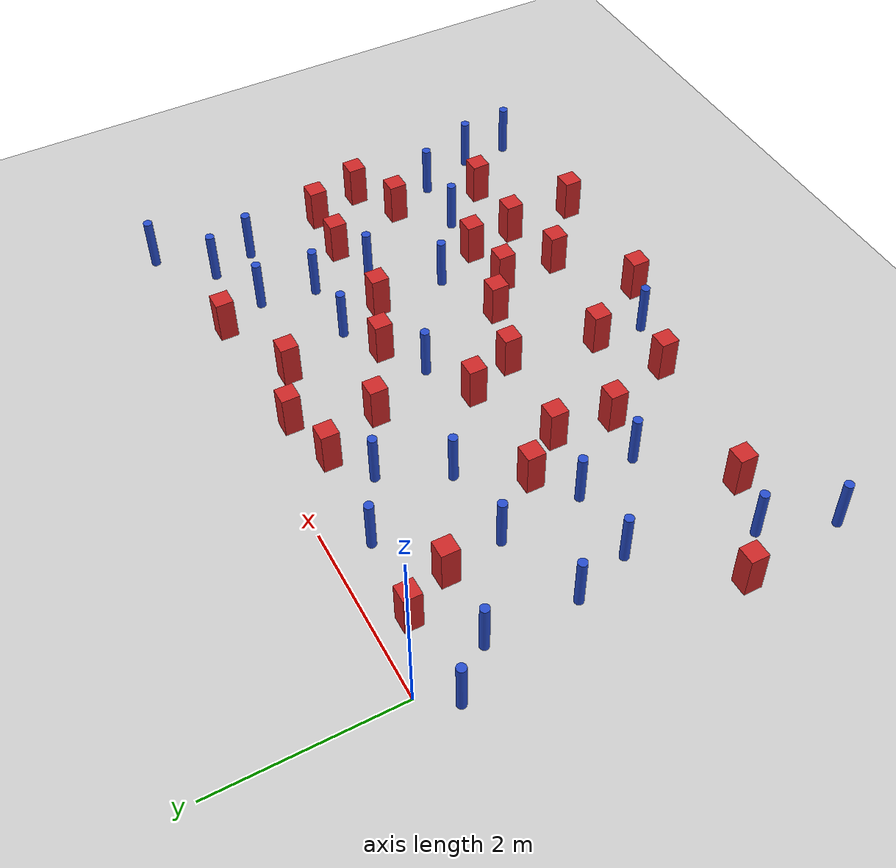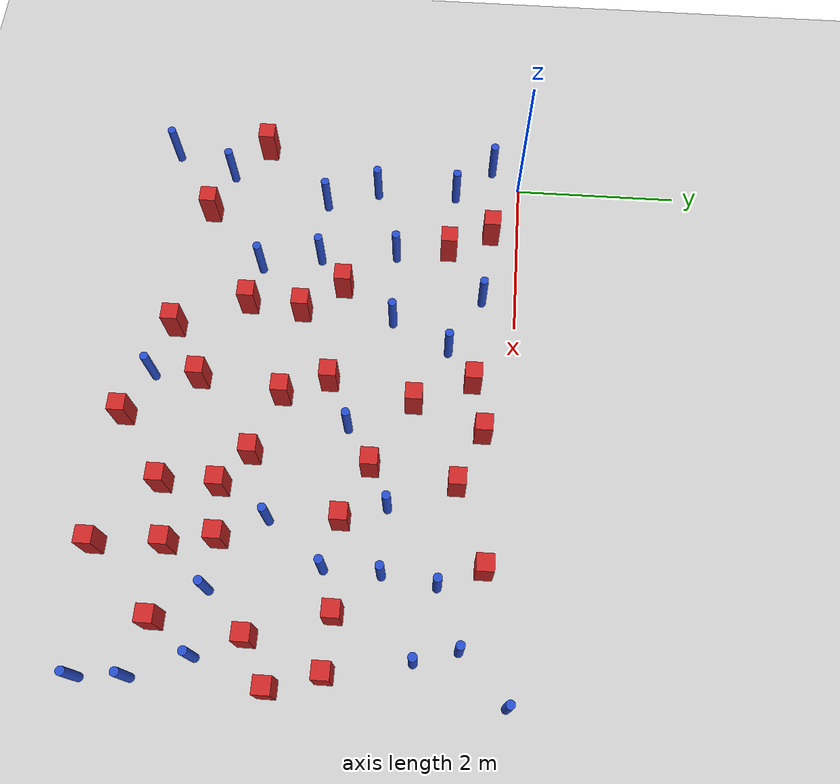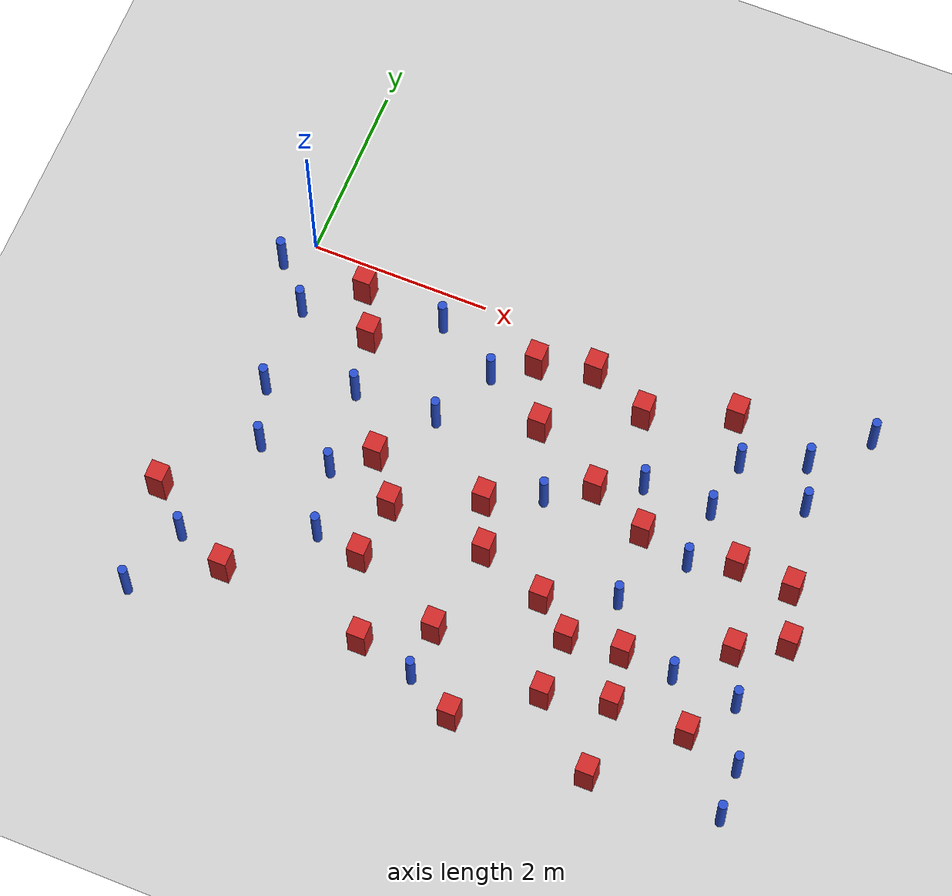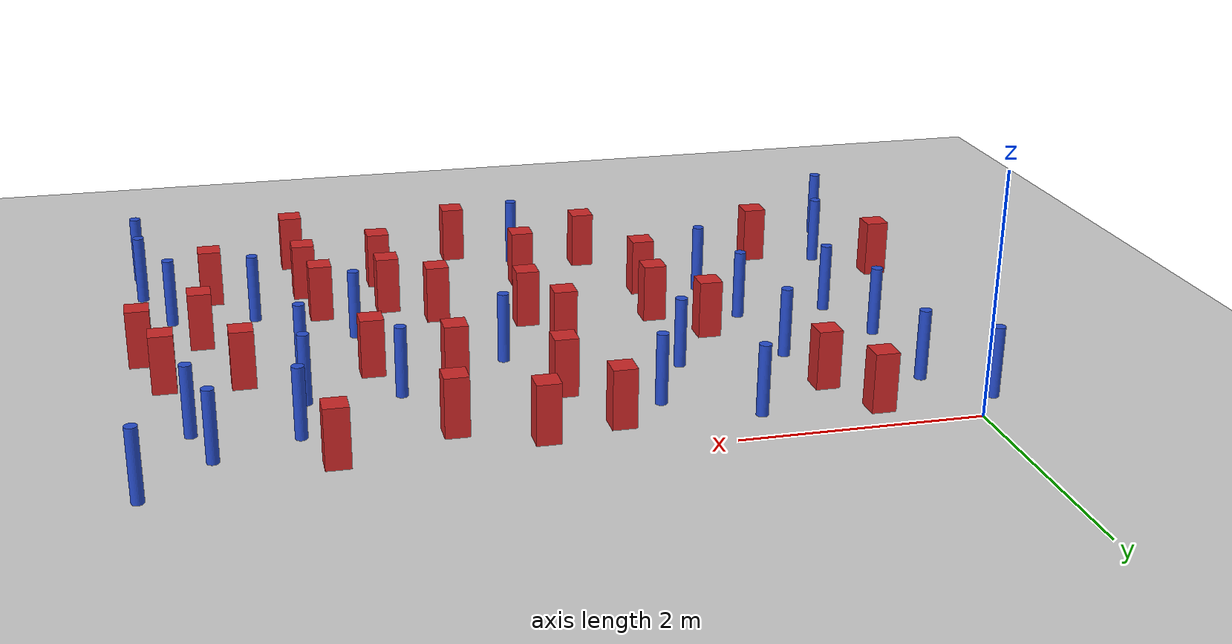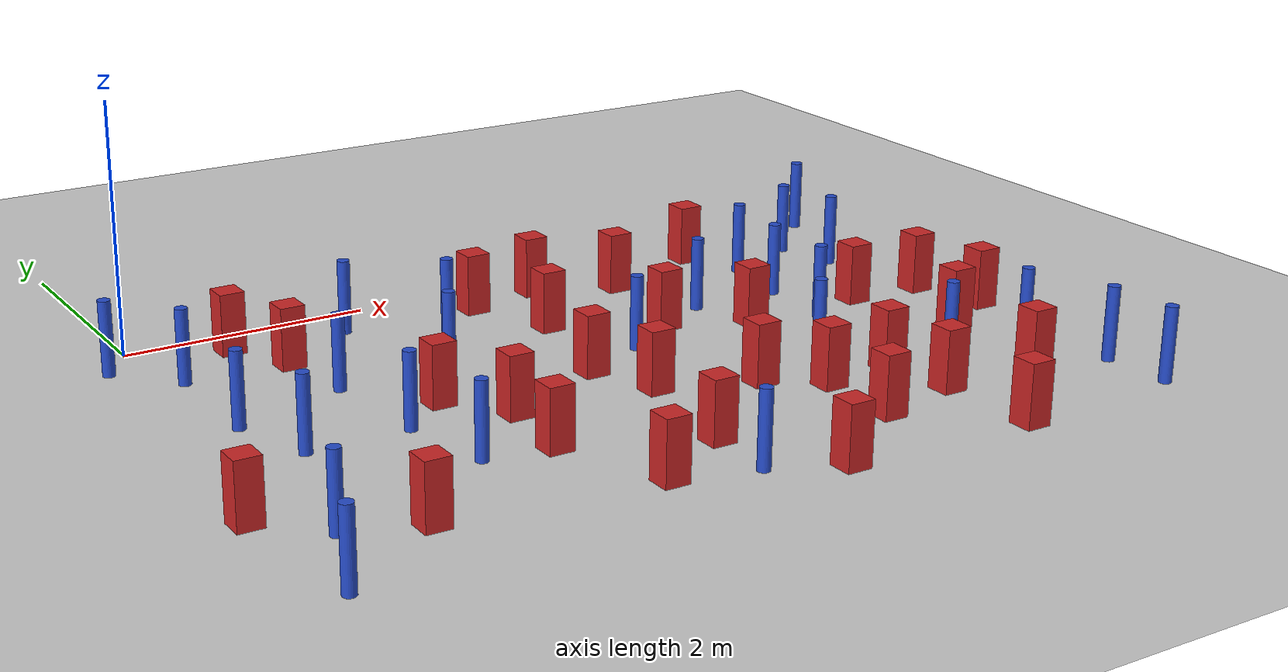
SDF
<sdf version="1.6">
 <world name="default">
  <model name="ground_plane">
   <static>1</static>
   <link name="link">
    <collision name="collision">
     <geometry><plane><normal>0 0 1</normal><size>100 100</size></plane></geometry>
     <surface><friction><ode><mu>100</mu><mu2>50</mu2></ode></friction></surface>
    </collision>
    <visual name="visual">
     <cast_shadows>0</cast_shadows>
     <geometry><plane><normal>0 0 1</normal><size>100 100</size></plane></geometry>
     <material>
      <ambient>1.0 1.0 1.0 1.0</ambient>
      <diffuse>0.8 0.8 0.8 1.0</diffuse>
      <specular>0.01 0.01 0.01 1.000000</specular>
     </material>
    </visual>
   </link>
  </model>
  <model name="NamedLocations">
   <static>true</static>
   <link name="DefaultStart"><pose>8.5 0 0 0 0 3.14</pose></link>
  </model>
  <model name="pole_obstacle3">
   <static>true</static>
   <pose>0.190104860917 -1.80409300815 7.38925637345e-09 -8.471706928e-08 1.24976765082e-08 -1.74513093016e-07</pose>
   <link name="link">
    <pose>0 0 0.3 0 -0 0</pose>
    <inertial>
     <mass>1</mass>
     <inertia><ixx>0.145833</ixx><ixy>0</ixy><ixz>0</ixz><iyy>0.145833</iyy><iyz>0</iyz><izz>0.125</izz></inertia>
    </inertial>
    <collision name="collision">
     <geometry><cylinder><radius>0.05</radius><length>.6</length></cylinder></geometry>
    </collision>
    <visual name="visual">
     <geometry><cylinder><radius>0.05</radius><length>.6</length></cylinder></geometry>
     <material>
      <script><name>Gazebo/Blue</name><uri>file://media/materials/scripts/gazebo.material</uri></script>
     </material>
    </visual>
   </link>
  </model>
  <model name="pole_obstacle4">
   <static>true</static>
   <pose>6.13488294941 -3.3037223995 7.38925637345e-09 -8.47170692798e-08 1.24976764937e-08 -1.74513093023e-07</pose>
   <link name="link">
    <pose>0 0 0.3 0 -0 0</pose>
    <inertial>
     <mass>1</mass>
     <inertia><ixx>0.145833</ixx><ixy>0</ixy><ixz>0</ixz><iyy>0.145833</iyy><iyz>0</iyz><izz>0.125</izz></inertia>
    </inertial>
    <collision name="collision">
     <geometry><cylinder><radius>0.05</radius><length>.6</length></cylinder></geometry>
    </collision>
    <visual name="visual">
     <geometry><cylinder><radius>0.05</radius><length>.6</length></cylinder></geometry>
     <material>
      <script><name>Gazebo/Blue</name><uri>file://media/materials/scripts/gazebo.material</uri></script>
     </material>
    </visual>
   </link>
  </model>
  <model name="square_post_obstacle13">
   <static>true</static>
   <pose>2.26537077516 -4.10136588118 1.91545236811e-07 -7.35059704564e-06 1.12565212e-07 2.39332434364e-05</pose>
   <link name="link">
    <pose>0 0 0.25 0 -0 0</pose>
    <inertial>
     <mass>100</mass>
     <inertia>
      <ixx>0.166667</ixx>
      <ixy>0</ixy>
      <ixz>0</ixz>
      <iyy>0.166667</iyy>
      <iyz>0</iyz>
      <izz>0.166667</izz>
     </inertia>
    </inertial>
    <collision name="collision"><geometry><box><size>.2 .2 .5</size></box></geometry></collision>
    <visual name="visual">
     <geometry><box><size>.2 .2 .5</size></box></geometry>
     <material>
      <script><name>Gazebo/Red</name><uri>file://media/materials/scripts/gazebo.material</uri></script>
     </material>
    </visual>
   </link>
  </model>
  <model name="pole_obstacle9">
   <static>true</static>
   <pose>5.41547490436 -3.25559603564 7.38925637345e-09 -8.47170692798e-08 1.24976764937e-08 -1.74513093023e-07</pose>
   <link name="link">
    <pose>0 0 0.3 0 -0 0</pose>
    <inertial>
     <mass>1</mass>
     <inertia><ixx>0.145833</ixx><ixy>0</ixy><ixz>0</ixz><iyy>0.145833</iyy><iyz>0</iyz><izz>0.125</izz></inertia>
    </inertial>
    <collision name="collision">
     <geometry><cylinder><radius>0.05</radius><length>.6</length></cylinder></geometry>
    </collision>
    <visual name="visual">
     <geometry><cylinder><radius>0.05</radius><length>.6</length></cylinder></geometry>
     <material>
      <script><name>Gazebo/Blue</name><uri>file://media/materials/scripts/gazebo.material</uri></script>
     </material>
    </visual>
   </link>
  </model>
  <model name="pole_obstacle28">
   <static>true</static>
   <pose>6.04790216632 -0.969246670873 7.38925637345e-09 -8.47170692799e-08 1.24976765054e-08 -1.74513093018e-07</pose>
   <link name="link">
    <pose>0 0 0.3 0 -0 0</pose>
    <inertial>
     <mass>1</mass>
     <inertia><ixx>0.145833</ixx><ixy>0</ixy><ixz>0</ixz><iyy>0.145833</iyy><iyz>0</iyz><izz>0.125</izz></inertia>
    </inertial>
    <collision name="collision">
     <geometry><cylinder><radius>0.05</radius><length>.6</length></cylinder></geometry>
    </collision>
    <visual name="visual">
     <geometry><cylinder><radius>0.05</radius><length>.6</length></cylinder></geometry>
     <material>
      <script><name>Gazebo/Blue</name><uri>file://media/materials/scripts/gazebo.material</uri></script>
     </material>
    </visual>
   </link>
  </model>
  <model name="square_post_obstacle34">
   <static>true</static>
   <pose>4.23699049042 -3.9463016719 1.91545236811e-07 -7.35059704564e-06 1.12565212e-07 2.39332434364e-05</pose>
   <link name="link">
    <pose>0 0 0.25 0 -0 0</pose>
    <inertial>
     <mass>100</mass>
     <inertia>
      <ixx>0.166667</ixx>
      <ixy>0</ixy>
      <ixz>0</ixz>
      <iyy>0.166667</iyy>
      <iyz>0</iyz>
      <izz>0.166667</izz>
     </inertia>
    </inertial>
    <collision name="collision"><geometry><box><size>.2 .2 .5</size></box></geometry></collision>
    <visual name="visual">
     <geometry><box><size>.2 .2 .5</size></box></geometry>
     <material>
      <script><name>Gazebo/Red</name><uri>file://media/materials/scripts/gazebo.material</uri></script>
     </material>
    </visual>
   </link>
  </model>
  <model name="pole_obstacle35">
   <static>true</static>
   <pose>0.180517765989 -0.8054261735 7.38925637345e-09 -8.47170692797e-08 1.24976764912e-08 -1.74513093025e-07</pose>
   <link name="link">
    <pose>0 0 0.3 0 -0 0</pose>
    <inertial>
     <mass>1</mass>
     <inertia><ixx>0.145833</ixx><ixy>0</ixy><ixz>0</ixz><iyy>0.145833</iyy><iyz>0</iyz><izz>0.125</izz></inertia>
    </inertial>
    <collision name="collision">
     <geometry><cylinder><radius>0.05</radius><length>.6</length></cylinder></geometry>
    </collision>
    <visual name="visual">
     <geometry><cylinder><radius>0.05</radius><length>.6</length></cylinder></geometry>
     <material>
      <script><name>Gazebo/Blue</name><uri>file://media/materials/scripts/gazebo.material</uri></script>
     </material>
    </visual>
   </link>
  </model>
  <model name="square_post_obstacle37">
   <static>true</static>
   <pose>3.08538696754 -2.70068323711 1.91545236811e-07 -7.35059704564e-06 1.12565212e-07 2.39332434364e-05</pose>
   <link name="link">
    <pose>0 0 0.25 0 -0 0</pose>
    <inertial>
     <mass>100</mass>
     <inertia>
      <ixx>0.166667</ixx>
      <ixy>0</ixy>
      <ixz>0</ixz>
      <iyy>0.166667</iyy>
      <iyz>0</iyz>
      <izz>0.166667</izz>
     </inertia>
    </inertial>
    <collision name="collision"><geometry><box><size>.2 .2 .5</size></box></geometry></collision>
    <visual name="visual">
     <geometry><box><size>.2 .2 .5</size></box></geometry>
     <material>
      <script><name>Gazebo/Red</name><uri>file://media/materials/scripts/gazebo.material</uri></script>
     </material>
    </visual>
   </link>
  </model>
  <model name="square_post_obstacle43">
   <static>true</static>
   <pose>6.2269963533 -1.89802736786 1.91545236811e-07 -7.35059704564e-06 1.12565212e-07 2.39332434364e-05</pose>
   <link name="link">
    <pose>0 0 0.25 0 -0 0</pose>
    <inertial>
     <mass>100</mass>
     <inertia>
      <ixx>0.166667</ixx>
      <ixy>0</ixy>
      <ixz>0</ixz>
      <iyy>0.166667</iyy>
      <iyz>0</iyz>
      <izz>0.166667</izz>
     </inertia>
    </inertial>
    <collision name="collision"><geometry><box><size>.2 .2 .5</size></box></geometry></collision>
    <visual name="visual">
     <geometry><box><size>.2 .2 .5</size></box></geometry>
     <material>
      <script><name>Gazebo/Red</name><uri>file://media/materials/scripts/gazebo.material</uri></script>
     </material>
    </visual>
   </link>
  </model>
  <model name="pole_obstacle46">
   <static>true</static>
   <pose>1.10864863287 -1.50291340868 7.38925637345e-09 -8.471706928e-08 1.24976765079e-08 -1.74513093017e-07</pose>
   <link name="link">
    <pose>0 0 0.3 0 -0 0</pose>
    <inertial>
     <mass>1</mass>
     <inertia><ixx>0.145833</ixx><ixy>0</ixy><ixz>0</ixz><iyy>0.145833</iyy><iyz>0</iyz><izz>0.125</izz></inertia>
    </inertial>
    <collision name="collision">
     <geometry><cylinder><radius>0.05</radius><length>.6</length></cylinder></geometry>
    </collision>
    <visual name="visual">
     <geometry><cylinder><radius>0.05</radius><length>.6</length></cylinder></geometry>
     <material>
      <script><name>Gazebo/Blue</name><uri>file://media/materials/scripts/gazebo.material</uri></script>
     </material>
    </visual>
   </link>
  </model>
  <model name="square_post_obstacle54">
   <static>true</static>
   <pose>6.40881073751 -2.48074420699 1.91545236811e-07 -7.35059704564e-06 1.12565212e-07 2.39332434364e-05</pose>
   <link name="link">
    <pose>0 0 0.25 0 -0 0</pose>
    <inertial>
     <mass>100</mass>
     <inertia>
      <ixx>0.166667</ixx>
      <ixy>0</ixy>
      <ixz>0</ixz>
      <iyy>0.166667</iyy>
      <iyz>0</iyz>
      <izz>0.166667</izz>
     </inertia>
    </inertial>
    <collision name="collision"><geometry><box><size>.2 .2 .5</size></box></geometry></collision>
    <visual name="visual">
     <geometry><box><size>.2 .2 .5</size></box></geometry>
     <material>
      <script><name>Gazebo/Red</name><uri>file://media/materials/scripts/gazebo.material</uri></script>
     </material>
    </visual>
   </link>
  </model>
  <model name="pole_obstacle55">
   <static>true</static>
   <pose>3.44064625358 -1.89906239642 7.38925637345e-09 -8.471706928e-08 1.24976765152e-08 -1.74513093012e-07</pose>
   <link name="link">
    <pose>0 0 0.3 0 -0 0</pose>
    <inertial>
     <mass>1</mass>
     <inertia><ixx>0.145833</ixx><ixy>0</ixy><ixz>0</ixz><iyy>0.145833</iyy><iyz>0</iyz><izz>0.125</izz></inertia>
    </inertial>
    <collision name="collision">
     <geometry><cylinder><radius>0.05</radius><length>.6</length></cylinder></geometry>
    </collision>
    <visual name="visual">
     <geometry><cylinder><radius>0.05</radius><length>.6</length></cylinder></geometry>
     <material>
      <script><name>Gazebo/Blue</name><uri>file://media/materials/scripts/gazebo.material</uri></script>
     </material>
    </visual>
   </link>
  </model>
  <model name="pole_obstacle59">
   <static>true</static>
   <pose>5.22656127073 -0.758784430327 7.38925637345e-09 -8.47170692799e-08 1.24976765038e-08 -1.74513093018e-07</pose>
   <link name="link">
    <pose>0 0 0.3 0 -0 0</pose>
    <inertial>
     <mass>1</mass>
     <inertia><ixx>0.145833</ixx><ixy>0</ixy><ixz>0</ixz><iyy>0.145833</iyy><iyz>0</iyz><izz>0.125</izz></inertia>
    </inertial>
    <collision name="collision">
     <geometry><cylinder><radius>0.05</radius><length>.6</length></cylinder></geometry>
    </collision>
    <visual name="visual">
     <geometry><cylinder><radius>0.05</radius><length>.6</length></cylinder></geometry>
     <material>
      <script><name>Gazebo/Blue</name><uri>file://media/materials/scripts/gazebo.material</uri></script>
     </material>
    </visual>
   </link>
  </model>
  <model name="square_post_obstacle64">
   <static>true</static>
   <pose>3.90134707465 -1.59947551996 1.91545236811e-07 -7.35059704564e-06 1.12565212e-07 2.39332434364e-05</pose>
   <link name="link">
    <pose>0 0 0.25 0 -0 0</pose>
    <inertial>
     <mass>100</mass>
     <inertia>
      <ixx>0.166667</ixx>
      <ixy>0</ixy>
      <ixz>0</ixz>
      <iyy>0.166667</iyy>
      <iyz>0</iyz>
      <izz>0.166667</izz>
     </inertia>
    </inertial>
    <collision name="collision"><geometry><box><size>.2 .2 .5</size></box></geometry></collision>
    <visual name="visual">
     <geometry><box><size>.2 .2 .5</size></box></geometry>
     <material>
      <script><name>Gazebo/Red</name><uri>file://media/materials/scripts/gazebo.material</uri></script>
     </material>
    </visual>
   </link>
  </model>
  <model name="square_post_obstacle80">
   <static>true</static>
   <pose>4.23727458246 -3.27920661459 1.91545236811e-07 -7.35059704564e-06 1.12565212e-07 2.39332434364e-05</pose>
   <link name="link">
    <pose>0 0 0.25 0 -0 0</pose>
    <inertial>
     <mass>100</mass>
     <inertia>
      <ixx>0.166667</ixx>
      <ixy>0</ixy>
      <ixz>0</ixz>
      <iyy>0.166667</iyy>
      <iyz>0</iyz>
      <izz>0.166667</izz>
     </inertia>
    </inertial>
    <collision name="collision"><geometry><box><size>.2 .2 .5</size></box></geometry></collision>
    <visual name="visual">
     <geometry><box><size>.2 .2 .5</size></box></geometry>
     <material>
      <script><name>Gazebo/Red</name><uri>file://media/materials/scripts/gazebo.material</uri></script>
     </material>
    </visual>
   </link>
  </model>
  <model name="square_post_obstacle82">
   <static>true</static>
   <pose>5.595499112 -1.85667878392 1.91545236811e-07 -7.35059704564e-06 1.12565212e-07 2.39332434364e-05</pose>
   <link name="link">
    <pose>0 0 0.25 0 -0 0</pose>
    <inertial>
     <mass>100</mass>
     <inertia>
      <ixx>0.166667</ixx>
      <ixy>0</ixy>
      <ixz>0</ixz>
      <iyy>0.166667</iyy>
      <iyz>0</iyz>
      <izz>0.166667</izz>
     </inertia>
    </inertial>
    <collision name="collision"><geometry><box><size>.2 .2 .5</size></box></geometry></collision>
    <visual name="visual">
     <geometry><box><size>.2 .2 .5</size></box></geometry>
     <material>
      <script><name>Gazebo/Red</name><uri>file://media/materials/scripts/gazebo.material</uri></script>
     </material>
    </visual>
   </link>
  </model>
  <model name="pole_obstacle94">
   <static>true</static>
   <pose>2.38616526436 -0.786271485599 7.38925637345e-09 -8.471706928e-08 1.24976765177e-08 -1.74513093012e-07</pose>
   <link name="link">
    <pose>0 0 0.3 0 -0 0</pose>
    <inertial>
     <mass>1</mass>
     <inertia><ixx>0.145833</ixx><ixy>0</ixy><ixz>0</ixz><iyy>0.145833</iyy><iyz>0</iyz><izz>0.125</izz></inertia>
    </inertial>
    <collision name="collision">
     <geometry><cylinder><radius>0.05</radius><length>.6</length></cylinder></geometry>
    </collision>
    <visual name="visual">
     <geometry><cylinder><radius>0.05</radius><length>.6</length></cylinder></geometry>
     <material>
      <script><name>Gazebo/Blue</name><uri>file://media/materials/scripts/gazebo.material</uri></script>
     </material>
    </visual>
   </link>
  </model>
  <model name="pole_obstacle95">
   <static>true</static>
   <pose>6.44394067832 0.0369719980429 7.38925637345e-09 -8.471706928e-08 1.24976765155e-08 -1.74513093014e-07</pose>
   <link name="link">
    <pose>0 0 0.3 0 -0 0</pose>
    <inertial>
     <mass>1</mass>
     <inertia><ixx>0.145833</ixx><ixy>0</ixy><ixz>0</ixz><iyy>0.145833</iyy><iyz>0</iyz><izz>0.125</izz></inertia>
    </inertial>
    <collision name="collision">
     <geometry><cylinder><radius>0.05</radius><length>.6</length></cylinder></geometry>
    </collision>
    <visual name="visual">
     <geometry><cylinder><radius>0.05</radius><length>.6</length></cylinder></geometry>
     <material>
      <script><name>Gazebo/Blue</name><uri>file://media/materials/scripts/gazebo.material</uri></script>
     </material>
    </visual>
   </link>
  </model>
  <model name="pole_obstacle100">
   <static>true</static>
   <pose>6.38369199765 -3.95732953606 7.38925637345e-09 -8.47170692799e-08 1.24976764984e-08 -1.7451309302e-07</pose>
   <link name="link">
    <pose>0 0 0.3 0 -0 0</pose>
    <inertial>
     <mass>1</mass>
     <inertia><ixx>0.145833</ixx><ixy>0</ixy><ixz>0</ixz><iyy>0.145833</iyy><iyz>0</iyz><izz>0.125</izz></inertia>
    </inertial>
    <collision name="collision">
     <geometry><cylinder><radius>0.05</radius><length>.6</length></cylinder></geometry>
    </collision>
    <visual name="visual">
     <geometry><cylinder><radius>0.05</radius><length>.6</length></cylinder></geometry>
     <material>
      <script><name>Gazebo/Blue</name><uri>file://media/materials/scripts/gazebo.material</uri></script>
     </material>
    </visual>
   </link>
  </model>
  <model name="pole_obstacle102">
   <static>true</static>
   <pose>4.59342651132 -2.69189861537 7.38925637345e-09 -8.47170692798e-08 1.24976764937e-08 -1.74513093023e-07</pose>
   <link name="link">
    <pose>0 0 0.3 0 -0 0</pose>
    <inertial>
     <mass>1</mass>
     <inertia><ixx>0.145833</ixx><ixy>0</ixy><ixz>0</ixz><iyy>0.145833</iyy><iyz>0</iyz><izz>0.125</izz></inertia>
    </inertial>
    <collision name="collision">
     <geometry><cylinder><radius>0.05</radius><length>.6</length></cylinder></geometry>
    </collision>
    <visual name="visual">
     <geometry><cylinder><radius>0.05</radius><length>.6</length></cylinder></geometry>
     <material>
      <script><name>Gazebo/Blue</name><uri>file://media/materials/scripts/gazebo.material</uri></script>
     </material>
    </visual>
   </link>
  </model>
  <model name="square_post_obstacle94">
   <static>true</static>
   <pose>5.89674232546 -2.76287436021 1.91545236811e-07 -7.35059704564e-06 1.12565212e-07 2.39332434364e-05</pose>
   <link name="link">
    <pose>0 0 0.25 0 -0 0</pose>
    <inertial>
     <mass>100</mass>
     <inertia>
      <ixx>0.166667</ixx>
      <ixy>0</ixy>
      <ixz>0</ixz>
      <iyy>0.166667</iyy>
      <iyz>0</iyz>
      <izz>0.166667</izz>
     </inertia>
    </inertial>
    <collision name="collision"><geometry><box><size>.2 .2 .5</size></box></geometry></collision>
    <visual name="visual">
     <geometry><box><size>.2 .2 .5</size></box></geometry>
     <material>
      <script><name>Gazebo/Red</name><uri>file://media/materials/scripts/gazebo.material</uri></script>
     </material>
    </visual>
   </link>
  </model>
  <model name="square_post_obstacle100">
   <static>true</static>
   <pose>3.44520752982 -4.51796388157 1.91545236811e-07 -7.35059704564e-06 1.12565212e-07 2.39332434364e-05</pose>
   <link name="link">
    <pose>0 0 0.25 0 -0 0</pose>
    <inertial>
     <mass>100</mass>
     <inertia>
      <ixx>0.166667</ixx>
      <ixy>0</ixy>
      <ixz>0</ixz>
      <iyy>0.166667</iyy>
      <iyz>0</iyz>
      <izz>0.166667</izz>
     </inertia>
    </inertial>
    <collision name="collision"><geometry><box><size>.2 .2 .5</size></box></geometry></collision>
    <visual name="visual">
     <geometry><box><size>.2 .2 .5</size></box></geometry>
     <material>
      <script><name>Gazebo/Red</name><uri>file://media/materials/scripts/gazebo.material</uri></script>
     </material>
    </visual>
   </link>
  </model>
  <model name="square_post_obstacle102">
   <static>true</static>
   <pose>4.93866771958 -3.77822067983 1.91545236811e-07 -7.35059704564e-06 1.12565212e-07 2.39332434364e-05</pose>
   <link name="link">
    <pose>0 0 0.25 0 -0 0</pose>
    <inertial>
     <mass>100</mass>
     <inertia>
      <ixx>0.166667</ixx>
      <ixy>0</ixy>
      <ixz>0</ixz>
      <iyy>0.166667</iyy>
      <iyz>0</iyz>
      <izz>0.166667</izz>
     </inertia>
    </inertial>
    <collision name="collision"><geometry><box><size>.2 .2 .5</size></box></geometry></collision>
    <visual name="visual">
     <geometry><box><size>.2 .2 .5</size></box></geometry>
     <material>
      <script><name>Gazebo/Red</name><uri>file://media/materials/scripts/gazebo.material</uri></script>
     </material>
    </visual>
   </link>
  </model>
  <model name="pole_obstacle116">
   <static>true</static>
   <pose>0.408193420048 -2.43793831841 7.38925637345e-09 -8.471706928e-08 1.24976765084e-08 -1.74513093017e-07</pose>
   <link name="link">
    <pose>0 0 0.3 0 -0 0</pose>
    <inertial>
     <mass>1</mass>
     <inertia><ixx>0.145833</ixx><ixy>0</ixy><ixz>0</ixz><iyy>0.145833</iyy><iyz>0</iyz><izz>0.125</izz></inertia>
    </inertial>
    <collision name="collision">
     <geometry><cylinder><radius>0.05</radius><length>.6</length></cylinder></geometry>
    </collision>
    <visual name="visual">
     <geometry><cylinder><radius>0.05</radius><length>.6</length></cylinder></geometry>
     <material>
      <script><name>Gazebo/Blue</name><uri>file://media/materials/scripts/gazebo.material</uri></script>
     </material>
    </visual>
   </link>
  </model>
  <model name="square_post_obstacle107">
   <static>true</static>
   <pose>4.06823470605 -0.60235144514 1.91545236811e-07 -7.35059704564e-06 1.12565212e-07 2.39332434364e-05</pose>
   <link name="link">
    <pose>0 0 0.25 0 -0 0</pose>
    <inertial>
     <mass>100</mass>
     <inertia>
      <ixx>0.166667</ixx>
      <ixy>0</ixy>
      <ixz>0</ixz>
      <iyy>0.166667</iyy>
      <iyz>0</iyz>
      <izz>0.166667</izz>
     </inertia>
    </inertial>
    <collision name="collision"><geometry><box><size>.2 .2 .5</size></box></geometry></collision>
    <visual name="visual">
     <geometry><box><size>.2 .2 .5</size></box></geometry>
     <material>
      <script><name>Gazebo/Red</name><uri>file://media/materials/scripts/gazebo.material</uri></script>
     </material>
    </visual>
   </link>
  </model>
  <model name="pole_obstacle121">
   <static>true</static>
   <pose>-0.234041641473 -4.45818141771 7.38925637345e-09 -8.47170692799e-08 1.2497676507e-08 -1.74513093018e-07</pose>
   <link name="link">
    <pose>0 0 0.3 0 -0 0</pose>
    <inertial>
     <mass>1</mass>
     <inertia><ixx>0.145833</ixx><ixy>0</ixy><ixz>0</ixz><iyy>0.145833</iyy><iyz>0</iyz><izz>0.125</izz></inertia>
    </inertial>
    <collision name="collision">
     <geometry><cylinder><radius>0.05</radius><length>.6</length></cylinder></geometry>
    </collision>
    <visual name="visual">
     <geometry><cylinder><radius>0.05</radius><length>.6</length></cylinder></geometry>
     <material>
      <script><name>Gazebo/Blue</name><uri>file://media/materials/scripts/gazebo.material</uri></script>
     </material>
    </visual>
   </link>
  </model>
  <model name="square_post_obstacle113">
   <static>true</static>
   <pose>0.612975244775 -3.89086558035 1.91545236811e-07 -7.35059704564e-06 1.12565212e-07 2.39332434364e-05</pose>
   <link name="link">
    <pose>0 0 0.25 0 -0 0</pose>
    <inertial>
     <mass>100</mass>
     <inertia>
      <ixx>0.166667</ixx>
      <ixy>0</ixy>
      <ixz>0</ixz>
      <iyy>0.166667</iyy>
      <iyz>0</iyz>
      <izz>0.166667</izz>
     </inertia>
    </inertial>
    <collision name="collision"><geometry><box><size>.2 .2 .5</size></box></geometry></collision>
    <visual name="visual">
     <geometry><box><size>.2 .2 .5</size></box></geometry>
     <material>
      <script><name>Gazebo/Red</name><uri>file://media/materials/scripts/gazebo.material</uri></script>
     </material>
    </visual>
   </link>
  </model>
  <model name="pole_obstacle135">
   <static>true</static>
   <pose>-0.241580248455 -0.348323415008 7.38925637345e-09 -8.47170692799e-08 1.2497676501e-08 -1.74513093019e-07</pose>
   <link name="link">
    <pose>0 0 0.3 0 -0 0</pose>
    <inertial>
     <mass>1</mass>
     <inertia><ixx>0.145833</ixx><ixy>0</ixy><ixz>0</ixz><iyy>0.145833</iyy><iyz>0</iyz><izz>0.125</izz></inertia>
    </inertial>
    <collision name="collision">
     <geometry><cylinder><radius>0.05</radius><length>.6</length></cylinder></geometry>
    </collision>
    <visual name="visual">
     <geometry><cylinder><radius>0.05</radius><length>.6</length></cylinder></geometry>
     <material>
      <script><name>Gazebo/Blue</name><uri>file://media/materials/scripts/gazebo.material</uri></script>
     </material>
    </visual>
   </link>
  </model>
  <model name="square_post_obstacle116">
   <static>true</static>
   <pose>3.41578919881 -0.332921589701 1.91545236811e-07 -7.35059704564e-06 1.12565212e-07 2.39332434364e-05</pose>
   <link name="link">
    <pose>0 0 0.25 0 -0 0</pose>
    <inertial>
     <mass>100</mass>
     <inertia>
      <ixx>0.166667</ixx>
      <ixy>0</ixy>
      <ixz>0</ixz>
      <iyy>0.166667</iyy>
      <iyz>0</iyz>
      <izz>0.166667</izz>
     </inertia>
    </inertial>
    <collision name="collision"><geometry><box><size>.2 .2 .5</size></box></geometry></collision>
    <visual name="visual">
     <geometry><box><size>.2 .2 .5</size></box></geometry>
     <material>
      <script><name>Gazebo/Red</name><uri>file://media/materials/scripts/gazebo.material</uri></script>
     </material>
    </visual>
   </link>
  </model>
  <model name="pole_obstacle143">
   <static>true</static>
   <pose>1.37550552298 -3.16352917887 7.38925637345e-09 -8.47170692799e-08 1.24976765053e-08 -1.74513093017e-07</pose>
   <link name="link">
    <pose>0 0 0.3 0 -0 0</pose>
    <inertial>
     <mass>1</mass>
     <inertia><ixx>0.145833</ixx><ixy>0</ixy><ixz>0</ixz><iyy>0.145833</iyy><iyz>0</iyz><izz>0.125</izz></inertia>
    </inertial>
    <collision name="collision">
     <geometry><cylinder><radius>0.05</radius><length>.6</length></cylinder></geometry>
    </collision>
    <visual name="visual">
     <geometry><cylinder><radius>0.05</radius><length>.6</length></cylinder></geometry>
     <material>
      <script><name>Gazebo/Blue</name><uri>file://media/materials/scripts/gazebo.material</uri></script>
     </material>
    </visual>
   </link>
  </model>
  <model name="pole_obstacle147">
   <static>true</static>
   <pose>2.03161095835 -1.47887132107 7.38925637345e-09 -8.471706928e-08 1.24976765091e-08 -1.74513093016e-07</pose>
   <link name="link">
    <pose>0 0 0.3 0 -0 0</pose>
    <inertial>
     <mass>1</mass>
     <inertia><ixx>0.145833</ixx><ixy>0</ixy><ixz>0</ixz><iyy>0.145833</iyy><iyz>0</iyz><izz>0.125</izz></inertia>
    </inertial>
    <collision name="collision">
     <geometry><cylinder><radius>0.05</radius><length>.6</length></cylinder></geometry>
    </collision>
    <visual name="visual">
     <geometry><cylinder><radius>0.05</radius><length>.6</length></cylinder></geometry>
     <material>
      <script><name>Gazebo/Blue</name><uri>file://media/materials/scripts/gazebo.material</uri></script>
     </material>
    </visual>
   </link>
  </model>
  <model name="pole_obstacle148">
   <static>true</static>
   <pose>1.67487731731 -0.408431496181 7.38925637345e-09 -8.47170692799e-08 1.24976765065e-08 -1.74513093017e-07</pose>
   <link name="link">
    <pose>0 0 0.3 0 -0 0</pose>
    <inertial>
     <mass>1</mass>
     <inertia><ixx>0.145833</ixx><ixy>0</ixy><ixz>0</ixz><iyy>0.145833</iyy><iyz>0</iyz><izz>0.125</izz></inertia>
    </inertial>
    <collision name="collision">
     <geometry><cylinder><radius>0.05</radius><length>.6</length></cylinder></geometry>
    </collision>
    <visual name="visual">
     <geometry><cylinder><radius>0.05</radius><length>.6</length></cylinder></geometry>
     <material>
      <script><name>Gazebo/Blue</name><uri>file://media/materials/scripts/gazebo.material</uri></script>
     </material>
    </visual>
   </link>
  </model>
  <model name="pole_obstacle155">
   <static>true</static>
   <pose>1.21126597006 -2.43875870268 7.38925637345e-09 -8.47170692799e-08 1.24976765053e-08 -1.74513093017e-07</pose>
   <link name="link">
    <pose>0 0 0.3 0 -0 0</pose>
    <inertial>
     <mass>1</mass>
     <inertia><ixx>0.145833</ixx><ixy>0</ixy><ixz>0</ixz><iyy>0.145833</iyy><iyz>0</iyz><izz>0.125</izz></inertia>
    </inertial>
    <collision name="collision">
     <geometry><cylinder><radius>0.05</radius><length>.6</length></cylinder></geometry>
    </collision>
    <visual name="visual">
     <geometry><cylinder><radius>0.05</radius><length>.6</length></cylinder></geometry>
     <material>
      <script><name>Gazebo/Blue</name><uri>file://media/materials/scripts/gazebo.material</uri></script>
     </material>
    </visual>
   </link>
  </model>
  <model name="square_post_obstacle147">
   <static>true</static>
   <pose>0.998170684138 -0.853879928674 1.91545236811e-07 -7.35059704564e-06 1.12565212e-07 2.39332434364e-05</pose>
   <link name="link">
    <pose>0 0 0.25 0 -0 0</pose>
    <inertial>
     <mass>100</mass>
     <inertia>
      <ixx>0.166667</ixx>
      <ixy>0</ixy>
      <ixz>0</ixz>
      <iyy>0.166667</iyy>
      <iyz>0</iyz>
      <izz>0.166667</izz>
     </inertia>
    </inertial>
    <collision name="collision"><geometry><box><size>.2 .2 .5</size></box></geometry></collision>
    <visual name="visual">
     <geometry><box><size>.2 .2 .5</size></box></geometry>
     <material>
      <script><name>Gazebo/Red</name><uri>file://media/materials/scripts/gazebo.material</uri></script>
     </material>
    </visual>
   </link>
  </model>
  <model name="square_post_obstacle159">
   <static>true</static>
   <pose>4.83932074579 -3.21287316476 1.91545236811e-07 -7.35059704564e-06 1.12565212e-07 2.39332434364e-05</pose>
   <link name="link">
    <pose>0 0 0.25 0 -0 0</pose>
    <inertial>
     <mass>100</mass>
     <inertia>
      <ixx>0.166667</ixx>
      <ixy>0</ixy>
      <ixz>0</ixz>
      <iyy>0.166667</iyy>
      <iyz>0</iyz>
      <izz>0.166667</izz>
     </inertia>
    </inertial>
    <collision name="collision"><geometry><box><size>.2 .2 .5</size></box></geometry></collision>
    <visual name="visual">
     <geometry><box><size>.2 .2 .5</size></box></geometry>
     <material>
      <script><name>Gazebo/Red</name><uri>file://media/materials/scripts/gazebo.material</uri></script>
     </material>
    </visual>
   </link>
  </model>
  <model name="pole_obstacle169">
   <static>true</static>
   <pose>5.11181254033 -2.0247705108 7.38925637345e-09 -8.471706928e-08 1.2497676506e-08 -1.74513093017e-07</pose>
   <link name="link">
    <pose>0 0 0.3 0 -0 0</pose>
    <inertial>
     <mass>1</mass>
     <inertia><ixx>0.145833</ixx><ixy>0</ixy><ixz>0</ixz><iyy>0.145833</iyy><iyz>0</iyz><izz>0.125</izz></inertia>
    </inertial>
    <collision name="collision">
     <geometry><cylinder><radius>0.05</radius><length>.6</length></cylinder></geometry>
    </collision>
    <visual name="visual">
     <geometry><cylinder><radius>0.05</radius><length>.6</length></cylinder></geometry>
     <material>
      <script><name>Gazebo/Blue</name><uri>file://media/materials/scripts/gazebo.material</uri></script>
     </material>
    </visual>
   </link>
  </model>
  <model name="square_post_obstacle162">
   <static>true</static>
   <pose>1.60386799594 -2.11218777321 1.91545236811e-07 -7.35059704564e-06 1.12565212e-07 2.39332434364e-05</pose>
   <link name="link">
    <pose>0 0 0.25 0 -0 0</pose>
    <inertial>
     <mass>100</mass>
     <inertia>
      <ixx>0.166667</ixx>
      <ixy>0</ixy>
      <ixz>0</ixz>
      <iyy>0.166667</iyy>
      <iyz>0</iyz>
      <izz>0.166667</izz>
     </inertia>
    </inertial>
    <collision name="collision"><geometry><box><size>.2 .2 .5</size></box></geometry></collision>
    <visual name="visual">
     <geometry><box><size>.2 .2 .5</size></box></geometry>
     <material>
      <script><name>Gazebo/Red</name><uri>file://media/materials/scripts/gazebo.material</uri></script>
     </material>
    </visual>
   </link>
  </model>
  <model name="square_post_obstacle164">
   <static>true</static>
   <pose>4.98588616391 -4.58839596339 1.91545236811e-07 -7.35059704564e-06 1.12565212e-07 2.39332434364e-05</pose>
   <link name="link">
    <pose>0 0 0.25 0 -0 0</pose>
    <inertial>
     <mass>100</mass>
     <inertia>
      <ixx>0.166667</ixx>
      <ixy>0</ixy>
      <ixz>0</ixz>
      <iyy>0.166667</iyy>
      <iyz>0</iyz>
      <izz>0.166667</izz>
     </inertia>
    </inertial>
    <collision name="collision"><geometry><box><size>.2 .2 .5</size></box></geometry></collision>
    <visual name="visual">
     <geometry><box><size>.2 .2 .5</size></box></geometry>
     <material>
      <script><name>Gazebo/Red</name><uri>file://media/materials/scripts/gazebo.material</uri></script>
     </material>
    </visual>
   </link>
  </model>
  <model name="square_post_obstacle168">
   <static>true</static>
   <pose>2.7897323156 -0.477017598708 1.91545236811e-07 -7.35059704564e-06 1.12565212e-07 2.39332434364e-05</pose>
   <link name="link">
    <pose>0 0 0.25 0 -0 0</pose>
    <inertial>
     <mass>100</mass>
     <inertia>
      <ixx>0.166667</ixx>
      <ixy>0</ixy>
      <ixz>0</ixz>
      <iyy>0.166667</iyy>
      <iyz>0</iyz>
      <izz>0.166667</izz>
     </inertia>
    </inertial>
    <collision name="collision"><geometry><box><size>.2 .2 .5</size></box></geometry></collision>
    <visual name="visual">
     <geometry><box><size>.2 .2 .5</size></box></geometry>
     <material>
      <script><name>Gazebo/Red</name><uri>file://media/materials/scripts/gazebo.material</uri></script>
     </material>
    </visual>
   </link>
  </model>
  <model name="pole_obstacle178">
   <static>true</static>
   <pose>5.90061551147 -0.488244463722 7.38925637345e-09 -8.471706928e-08 1.24976765164e-08 -1.74513093013e-07</pose>
   <link name="link">
    <pose>0 0 0.3 0 -0 0</pose>
    <inertial>
     <mass>1</mass>
     <inertia><ixx>0.145833</ixx><ixy>0</ixy><ixz>0</ixz><iyy>0.145833</iyy><iyz>0</iyz><izz>0.125</izz></inertia>
    </inertial>
    <collision name="collision">
     <geometry><cylinder><radius>0.05</radius><length>.6</length></cylinder></geometry>
    </collision>
    <visual name="visual">
     <geometry><cylinder><radius>0.05</radius><length>.6</length></cylinder></geometry>
     <material>
      <script><name>Gazebo/Blue</name><uri>file://media/materials/scripts/gazebo.material</uri></script>
     </material>
    </visual>
   </link>
  </model>
  <model name="square_post_obstacle169">
   <static>true</static>
   <pose>4.54821618581 -1.87709393361 1.91545236811e-07 -7.35059704564e-06 1.12565212e-07 2.39332434364e-05</pose>
   <link name="link">
    <pose>0 0 0.25 0 -0 0</pose>
    <inertial>
     <mass>100</mass>
     <inertia>
      <ixx>0.166667</ixx>
      <ixy>0</ixy>
      <ixz>0</ixz>
      <iyy>0.166667</iyy>
      <iyz>0</iyz>
      <izz>0.166667</izz>
     </inertia>
    </inertial>
    <collision name="collision"><geometry><box><size>.2 .2 .5</size></box></geometry></collision>
    <visual name="visual">
     <geometry><box><size>.2 .2 .5</size></box></geometry>
     <material>
      <script><name>Gazebo/Red</name><uri>file://media/materials/scripts/gazebo.material</uri></script>
     </material>
    </visual>
   </link>
  </model>
  <model name="pole_obstacle187">
   <static>true</static>
   <pose>5.13618426016 -1.37909686135 7.38925637345e-09 -8.471706928e-08 1.24976765134e-08 -1.74513093015e-07</pose>
   <link name="link">
    <pose>0 0 0.3 0 -0 0</pose>
    <inertial>
     <mass>1</mass>
     <inertia><ixx>0.145833</ixx><ixy>0</ixy><ixz>0</ixz><iyy>0.145833</iyy><iyz>0</iyz><izz>0.125</izz></inertia>
    </inertial>
    <collision name="collision">
     <geometry><cylinder><radius>0.05</radius><length>.6</length></cylinder></geometry>
    </collision>
    <visual name="visual">
     <geometry><cylinder><radius>0.05</radius><length>.6</length></cylinder></geometry>
     <material>
      <script><name>Gazebo/Blue</name><uri>file://media/materials/scripts/gazebo.material</uri></script>
     </material>
    </visual>
   </link>
  </model>
  <model name="square_post_obstacle176">
   <static>true</static>
   <pose>1.96656517462 -2.58856377472 1.91545236811e-07 -7.35059704564e-06 1.12565212e-07 2.39332434364e-05</pose>
   <link name="link">
    <pose>0 0 0.25 0 -0 0</pose>
    <inertial>
     <mass>100</mass>
     <inertia>
      <ixx>0.166667</ixx>
      <ixy>0</ixy>
      <ixz>0</ixz>
      <iyy>0.166667</iyy>
      <iyz>0</iyz>
      <izz>0.166667</izz>
     </inertia>
    </inertial>
    <collision name="collision"><geometry><box><size>.2 .2 .5</size></box></geometry></collision>
    <visual name="visual">
     <geometry><box><size>.2 .2 .5</size></box></geometry>
     <material>
      <script><name>Gazebo/Red</name><uri>file://media/materials/scripts/gazebo.material</uri></script>
     </material>
    </visual>
   </link>
  </model>
  <model name="square_post_obstacle177">
   <static>true</static>
   <pose>1.89815695815 -3.2465171918 1.91545236811e-07 -7.35059704564e-06 1.12565212e-07 2.39332434364e-05</pose>
   <link name="link">
    <pose>0 0 0.25 0 -0 0</pose>
    <inertial>
     <mass>100</mass>
     <inertia>
      <ixx>0.166667</ixx>
      <ixy>0</ixy>
      <ixz>0</ixz>
      <iyy>0.166667</iyy>
      <iyz>0</iyz>
      <izz>0.166667</izz>
     </inertia>
    </inertial>
    <collision name="collision"><geometry><box><size>.2 .2 .5</size></box></geometry></collision>
    <visual name="visual">
     <geometry><box><size>.2 .2 .5</size></box></geometry>
     <material>
      <script><name>Gazebo/Red</name><uri>file://media/materials/scripts/gazebo.material</uri></script>
     </material>
    </visual>
   </link>
  </model>
  <model name="square_post_obstacle187">
   <static>true</static>
   <pose>2.92983825429 -3.70126153625 1.91545236811e-07 -7.35059704564e-06 1.12565212e-07 2.39332434364e-05</pose>
   <link name="link">
    <pose>0 0 0.25 0 -0 0</pose>
    <inertial>
     <mass>100</mass>
     <inertia>
      <ixx>0.166667</ixx>
      <ixy>0</ixy>
      <ixz>0</ixz>
      <iyy>0.166667</iyy>
      <iyz>0</iyz>
      <izz>0.166667</izz>
     </inertia>
    </inertial>
    <collision name="collision"><geometry><box><size>.2 .2 .5</size></box></geometry></collision>
    <visual name="visual">
     <geometry><box><size>.2 .2 .5</size></box></geometry>
     <material>
      <script><name>Gazebo/Red</name><uri>file://media/materials/scripts/gazebo.material</uri></script>
     </material>
    </visual>
   </link>
  </model>
  <model name="square_post_obstacle197">
   <static>true</static>
   <pose>-0.38691952249 -3.27407679285 1.91545236811e-07 -7.35059704564e-06 1.12565212e-07 2.39332434364e-05</pose>
   <link name="link">
    <pose>0 0 0.25 0 -0 0</pose>
    <inertial>
     <mass>100</mass>
     <inertia>
      <ixx>0.166667</ixx>
      <ixy>0</ixy>
      <ixz>0</ixz>
      <iyy>0.166667</iyy>
      <iyz>0</iyz>
      <izz>0.166667</izz>
     </inertia>
    </inertial>
    <collision name="collision"><geometry><box><size>.2 .2 .5</size></box></geometry></collision>
    <visual name="visual">
     <geometry><box><size>.2 .2 .5</size></box></geometry>
     <material>
      <script><name>Gazebo/Red</name><uri>file://media/materials/scripts/gazebo.material</uri></script>
     </material>
    </visual>
   </link>
  </model>
  <model name="square_post_obstacle200">
   <static>true</static>
   <pose>2.86859701634 -2.16529984694 1.91545236811e-07 -7.35059704564e-06 1.12565212e-07 2.39332434364e-05</pose>
   <link name="link">
    <pose>0 0 0.25 0 -0 0</pose>
    <inertial>
     <mass>100</mass>
     <inertia>
      <ixx>0.166667</ixx>
      <ixy>0</ixy>
      <ixz>0</ixz>
      <iyy>0.166667</iyy>
      <iyz>0</iyz>
      <izz>0.166667</izz>
     </inertia>
    </inertial>
    <collision name="collision"><geometry><box><size>.2 .2 .5</size></box></geometry></collision>
    <visual name="visual">
     <geometry><box><size>.2 .2 .5</size></box></geometry>
     <material>
      <script><name>Gazebo/Red</name><uri>file://media/materials/scripts/gazebo.material</uri></script>
     </material>
    </visual>
   </link>
  </model>
  <model name="square_post_obstacle201">
   <static>true</static>
   <pose>0.731370178556 -0.334741374104 1.91545236811e-07 -7.35059704564e-06 1.12565212e-07 2.39332434364e-05</pose>
   <link name="link">
    <pose>0 0 0.25 0 -0 0</pose>
    <inertial>
     <mass>100</mass>
     <inertia>
      <ixx>0.166667</ixx>
      <ixy>0</ixy>
      <ixz>0</ixz>
      <iyy>0.166667</iyy>
      <iyz>0</iyz>
      <izz>0.166667</izz>
     </inertia>
    </inertial>
    <collision name="collision"><geometry><box><size>.2 .2 .5</size></box></geometry></collision>
    <visual name="visual">
     <geometry><box><size>.2 .2 .5</size></box></geometry>
     <material>
      <script><name>Gazebo/Red</name><uri>file://media/materials/scripts/gazebo.material</uri></script>
     </material>
    </visual>
   </link>
  </model>
  <model name="pole_obstacle194">
   <static>true</static>
   <pose>4.37234539069 -1.36894615015 7.38925637345e-09 -8.471706928e-08 1.24976765134e-08 -1.74513093015e-07</pose>
   <link name="link">
    <pose>0 0 0.3 0 -0 0</pose>
    <inertial>
     <mass>1</mass>
     <inertia><ixx>0.145833</ixx><ixy>0</ixy><ixz>0</ixz><iyy>0.145833</iyy><iyz>0</iyz><izz>0.125</izz></inertia>
    </inertial>
    <collision name="collision">
     <geometry><cylinder><radius>0.05</radius><length>.6</length></cylinder></geometry>
    </collision>
    <visual name="visual">
     <geometry><cylinder><radius>0.05</radius><length>.6</length></cylinder></geometry>
     <material>
      <script><name>Gazebo/Blue</name><uri>file://media/materials/scripts/gazebo.material</uri></script>
     </material>
    </visual>
   </link>
  </model>
  <model name="pole_obstacle197">
   <static>true</static>
   <pose>6.41158824464 -4.50464131252 7.38925637345e-09 -8.47170692796e-08 1.24976764786e-08 -1.74513093032e-07</pose>
   <link name="link">
    <pose>0 0 0.3 0 -0 0</pose>
    <inertial>
     <mass>1</mass>
     <inertia><ixx>0.145833</ixx><ixy>0</ixy><ixz>0</ixz><iyy>0.145833</iyy><iyz>0</iyz><izz>0.125</izz></inertia>
    </inertial>
    <collision name="collision">
     <geometry><cylinder><radius>0.05</radius><length>.6</length></cylinder></geometry>
    </collision>
    <visual name="visual">
     <geometry><cylinder><radius>0.05</radius><length>.6</length></cylinder></geometry>
     <material>
      <script><name>Gazebo/Blue</name><uri>file://media/materials/scripts/gazebo.material</uri></script>
     </material>
    </visual>
   </link>
  </model>
  <model name="pole_obstacle208">
   <static>true</static>
   <pose>2.90811910871 -4.26701880531 7.38925637345e-09 -8.47170692798e-08 1.24976765033e-08 -1.74513093019e-07</pose>
   <link name="link">
    <pose>0 0 0.3 0 -0 0</pose>
    <inertial>
     <mass>1</mass>
     <inertia><ixx>0.145833</ixx><ixy>0</ixy><ixz>0</ixz><iyy>0.145833</iyy><iyz>0</iyz><izz>0.125</izz></inertia>
    </inertial>
    <collision name="collision">
     <geometry><cylinder><radius>0.05</radius><length>.6</length></cylinder></geometry>
    </collision>
    <visual name="visual">
     <geometry><cylinder><radius>0.05</radius><length>.6</length></cylinder></geometry>
     <material>
      <script><name>Gazebo/Blue</name><uri>file://media/materials/scripts/gazebo.material</uri></script>
     </material>
    </visual>
   </link>
  </model>
  <model name="pole_obstacle213">
   <static>true</static>
   <pose>0.0461337413392 -3.695331843 7.38925637345e-09 -8.47170692793e-08 1.24976764386e-08 -1.74513093042e-07</pose>
   <link name="link">
    <pose>0 0 0.3 0 -0 0</pose>
    <inertial>
     <mass>1</mass>
     <inertia><ixx>0.145833</ixx><ixy>0</ixy><ixz>0</ixz><iyy>0.145833</iyy><iyz>0</iyz><izz>0.125</izz></inertia>
    </inertial>
    <collision name="collision">
     <geometry><cylinder><radius>0.05</radius><length>.6</length></cylinder></geometry>
    </collision>
    <visual name="visual">
     <geometry><cylinder><radius>0.05</radius><length>.6</length></cylinder></geometry>
     <material>
      <script><name>Gazebo/Blue</name><uri>file://media/materials/scripts/gazebo.material</uri></script>
     </material>
    </visual>
   </link>
  </model>
  <model name="square_post_obstacle207">
   <static>true</static>
   <pose>3.8368714947 -2.96779656423 1.91545236811e-07 -7.35059704564e-06 1.12565212e-07 2.39332434364e-05</pose>
   <link name="link">
    <pose>0 0 0.25 0 -0 0</pose>
    <inertial>
     <mass>100</mass>
     <inertia>
      <ixx>0.166667</ixx>
      <ixy>0</ixy>
      <ixz>0</ixz>
      <iyy>0.166667</iyy>
      <iyz>0</iyz>
      <izz>0.166667</izz>
     </inertia>
    </inertial>
    <collision name="collision"><geometry><box><size>.2 .2 .5</size></box></geometry></collision>
    <visual name="visual">
     <geometry><box><size>.2 .2 .5</size></box></geometry>
     <material>
      <script><name>Gazebo/Red</name><uri>file://media/materials/scripts/gazebo.material</uri></script>
     </material>
    </visual>
   </link>
  </model>
  <model name="square_post_obstacle208">
   <static>true</static>
   <pose>5.00806230678 -0.26040962401 1.91545236811e-07 -7.35059704564e-06 1.12565212e-07 2.39332434364e-05</pose>
   <link name="link">
    <pose>0 0 0.25 0 -0 0</pose>
    <inertial>
     <mass>100</mass>
     <inertia>
      <ixx>0.166667</ixx>
      <ixy>0</ixy>
      <ixz>0</ixz>
      <iyy>0.166667</iyy>
      <iyz>0</iyz>
      <izz>0.166667</izz>
     </inertia>
    </inertial>
    <collision name="collision"><geometry><box><size>.2 .2 .5</size></box></geometry></collision>
    <visual name="visual">
     <geometry><box><size>.2 .2 .5</size></box></geometry>
     <material>
      <script><name>Gazebo/Red</name><uri>file://media/materials/scripts/gazebo.material</uri></script>
     </material>
    </visual>
   </link>
  </model>
  <model name="square_post_obstacle214">
   <static>true</static>
   <pose>3.0933377558 -1.15327359512 1.91545236811e-07 -7.35059704564e-06 1.12565212e-07 2.39332434364e-05</pose>
   <link name="link">
    <pose>0 0 0.25 0 -0 0</pose>
    <inertial>
     <mass>100</mass>
     <inertia>
      <ixx>0.166667</ixx>
      <ixy>0</ixy>
      <ixz>0</ixz>
      <iyy>0.166667</iyy>
      <iyz>0</iyz>
      <izz>0.166667</izz>
     </inertia>
    </inertial>
    <collision name="collision"><geometry><box><size>.2 .2 .5</size></box></geometry></collision>
    <visual name="visual">
     <geometry><box><size>.2 .2 .5</size></box></geometry>
     <material>
      <script><name>Gazebo/Red</name><uri>file://media/materials/scripts/gazebo.material</uri></script>
     </material>
    </visual>
   </link>
  </model>
  <model name="square_post_obstacle226">
   <static>true</static>
   <pose>5.7721599648 -3.79310001192 1.91545236811e-07 -7.35059704564e-06 1.12565212e-07 2.39332434364e-05</pose>
   <link name="link">
    <pose>0 0 0.25 0 -0 0</pose>
    <inertial>
     <mass>100</mass>
     <inertia>
      <ixx>0.166667</ixx>
      <ixy>0</ixy>
      <ixz>0</ixz>
      <iyy>0.166667</iyy>
      <iyz>0</iyz>
      <izz>0.166667</izz>
     </inertia>
    </inertial>
    <collision name="collision"><geometry><box><size>.2 .2 .5</size></box></geometry></collision>
    <visual name="visual">
     <geometry><box><size>.2 .2 .5</size></box></geometry>
     <material>
      <script><name>Gazebo/Red</name><uri>file://media/materials/scripts/gazebo.material</uri></script>
     </material>
    </visual>
   </link>
  </model>
 </world>
</sdf>
